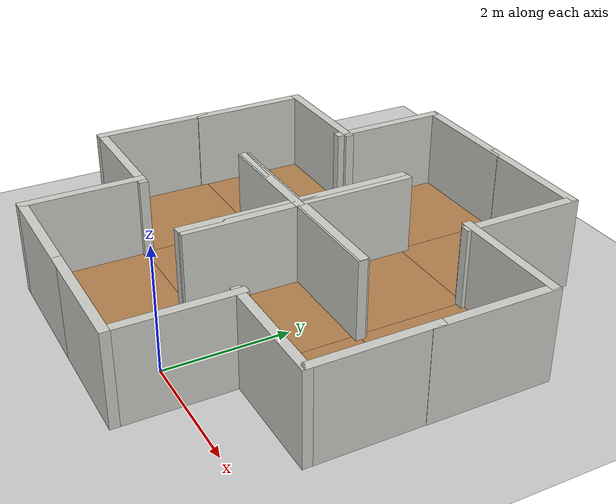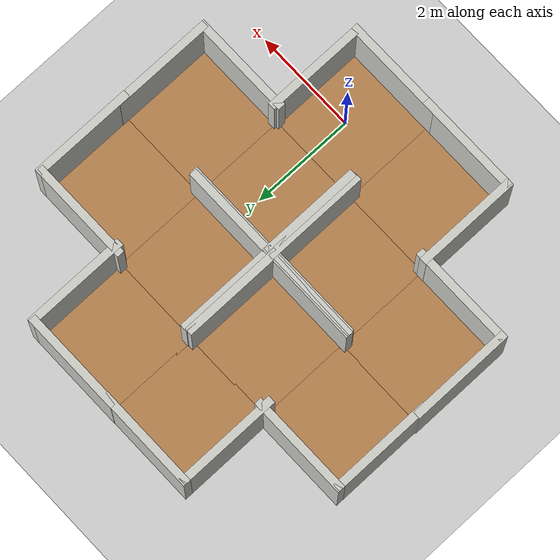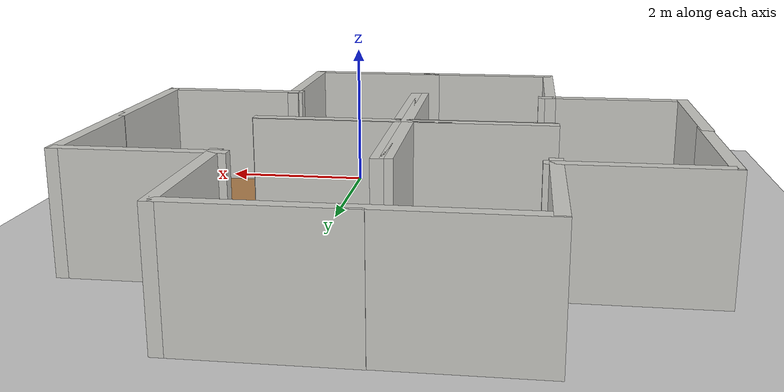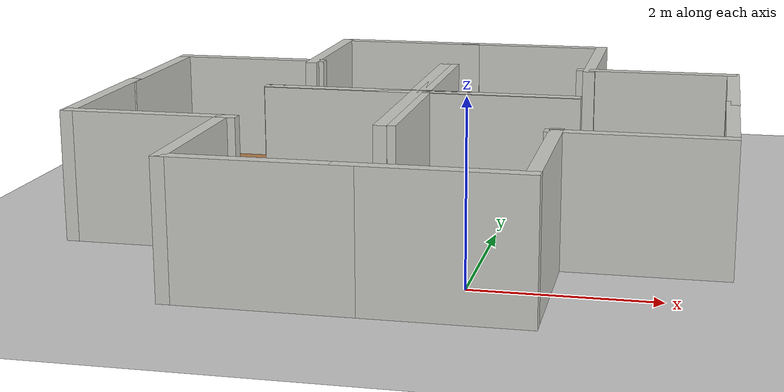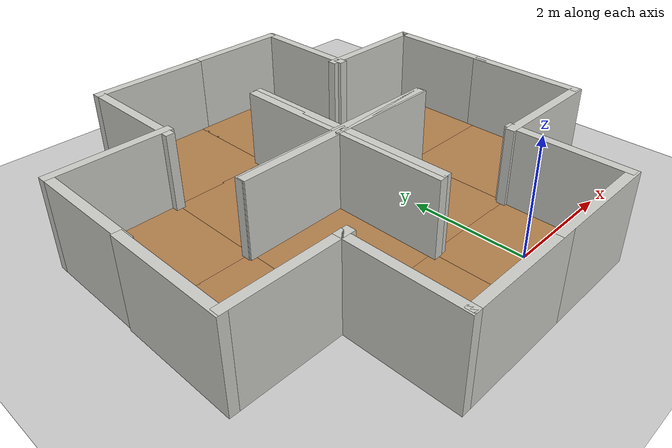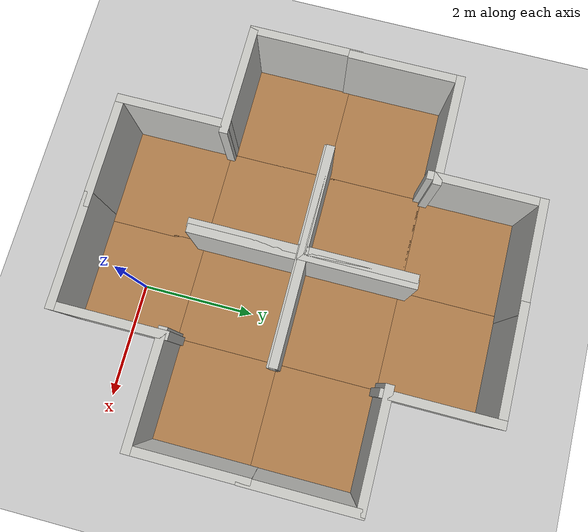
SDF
<sdf version="1.6">
 <world name="default">
  <light name="sun" type="directional">
   <pose>0 0 10 0 -0 0</pose>
   <diffuse>0.8 0.8 0.8 1</diffuse>
   <specular>0.1 0.1 0.1 1</specular>
   <attenuation>
    <range>1000</range>
    <constant>0.9</constant>
    <linear>0.01</linear>
    <quadratic>0.001</quadratic>
   </attenuation>
   <direction>-0.5 0.5 -1</direction>
  </light>
  <model name="ground_plane">
   <static>1</static>
   <link name="link">
    <collision name="collision">
     <geometry><plane><normal>0 0 1</normal><size>100 100</size></plane></geometry>
     <surface><friction><ode><mu>100</mu><mu2>50</mu2></ode></friction></surface>
    </collision>
    <visual name="visual">
     <cast_shadows>0</cast_shadows>
     <geometry><plane><normal>0 0 1</normal><size>100 100</size></plane></geometry>
     <material>
      <script><uri>file://media/materials/scripts/gazebo.material</uri><name>Gazebo/Grey</name></script>
     </material>
    </visual>
   </link>
  </model>
  <gravity>0 0 -9.8</gravity>
  <magnetic_field>6e-06 2.3e-05 -4.2e-05</magnetic_field>
  <atmosphere type="adiabatic"/>
  <physics name="default_physics" default="0" type="ode">
   <max_step_size>0.001</max_step_size>
   <real_time_factor>1</real_time_factor>
   <real_time_update_rate>1000</real_time_update_rate>
  </physics>
  <scene><ambient>0.4 0.4 0.4 1</ambient><background>0.7 0.7 0.7 1</background><shadows>1</shadows></scene>
  <spherical_coordinates>
   <surface_model>EARTH_WGS84</surface_model>
   <latitude_deg>0</latitude_deg>
   <longitude_deg>0</longitude_deg>
   <elevation>0</elevation>
   <heading_deg>0</heading_deg>
  </spherical_coordinates>
  <model name="nervemaze_corner">
   <pose>-0.136433 1.76341 0 0 -0 0</pose>
   <link name="Wall_0">
    <collision name="Wall_0_Collision">
     <geometry><box><size>1.76 1.75 0.2</size></box></geometry>
     <pose>0 0 0.1 0 -0 0</pose>
    </collision>
    <visual name="Wall_0_Visual">
     <pose>0 0 0.1 0 -0 0</pose>
     <geometry><box><size>1.76 1.75 0.2</size></box></geometry>
     <material>
      <script><uri>file://media/materials/scripts/gazebo.material</uri><name>Gazebo/Wood</name></script>
      <ambient>1 0.764706 0.305882 1</ambient>
     </material>
    </visual>
    <pose>0.027 -0.018 0 0 0 -1.5708</pose>
   </link>
   <link name="Wall_4">
    <collision name="Wall_4_Collision">
     <geometry><box><size>2 0.15 1.5</size></box></geometry>
     <pose>0 0 0.75 0 -0 0</pose>
    </collision>
    <visual name="Wall_4_Visual">
     <pose>0 0 0.75 0 -0 0</pose>
     <geometry><box><size>2 0.15 1.5</size></box></geometry>
     <material>
      <script><uri>file://media/materials/scripts/gazebo.material</uri><name>Gazebo/CeilingTiled</name></script>
      <ambient>1 0.764706 0.305882 1</ambient>
     </material>
    </visual>
    <pose>-0.925 -0.015 0 0 0 -1.5708</pose>
   </link>
   <link name="Wall_6">
    <collision name="Wall_6_Collision">
     <geometry><box><size>2 0.15 1.5</size></box></geometry>
     <pose>0 0 0.75 0 -0 0</pose>
    </collision>
    <visual name="Wall_6_Visual">
     <pose>0 0 0.75 0 -0 0</pose>
     <geometry><box><size>2 0.15 1.5</size></box></geometry>
     <material>
      <script><uri>file://media/materials/scripts/gazebo.material</uri><name>Gazebo/CeilingTiled</name></script>
      <ambient>1 0.764706 0.305882 1</ambient>
     </material>
    </visual>
    <pose>0 0.94 0 0 -0 0</pose>
   </link>
   <static>1</static>
  </model>
  <model name="nervemaze_corner_0">
   <pose>1.66388 1.80887 0 0 0 -3.14159</pose>
   <link name="Wall_0">
    <collision name="Wall_0_Collision">
     <geometry><box><size>1.76 1.75 0.2</size></box></geometry>
     <pose>0 0 0.1 0 -0 0</pose>
    </collision>
    <visual name="Wall_0_Visual">
     <pose>0 0 0.1 0 -0 0</pose>
     <geometry><box><size>1.76 1.75 0.2</size></box></geometry>
     <material>
      <script><uri>file://media/materials/scripts/gazebo.material</uri><name>Gazebo/Wood</name></script>
      <ambient>1 0.764706 0.305882 1</ambient>
     </material>
    </visual>
    <pose>0.027 -0.018 0 0 0 -1.5708</pose>
   </link>
   <link name="Wall_4">
    <collision name="Wall_4_Collision">
     <geometry><box><size>2 0.15 1.5</size></box></geometry>
     <pose>0 0 0.75 0 -0 0</pose>
    </collision>
    <visual name="Wall_4_Visual">
     <pose>0 0 0.75 0 -0 0</pose>
     <geometry><box><size>2 0.15 1.5</size></box></geometry>
     <material>
      <script><uri>file://media/materials/scripts/gazebo.material</uri><name>Gazebo/CeilingTiled</name></script>
      <ambient>1 0.764706 0.305882 1</ambient>
     </material>
    </visual>
    <pose>-0.925 -0.015 0 0 0 -1.5708</pose>
   </link>
   <link name="Wall_6">
    <collision name="Wall_6_Collision">
     <geometry><box><size>2 0.15 1.5</size></box></geometry>
     <pose>0 0 0.75 0 -0 0</pose>
    </collision>
    <visual name="Wall_6_Visual">
     <pose>0 0 0.75 0 -0 0</pose>
     <geometry><box><size>2 0.15 1.5</size></box></geometry>
     <material>
      <script><uri>file://media/materials/scripts/gazebo.material</uri><name>Gazebo/CeilingTiled</name></script>
      <ambient>1 0.764706 0.305882 1</ambient>
     </material>
    </visual>
    <pose>0 0.94 0 0 -0 0</pose>
   </link>
   <static>1</static>
  </model>
  <model name="nervemaze_corner_1">
   <pose>-0.136436 -0.021514 0 0 -0 3.14159</pose>
   <link name="Wall_0">
    <collision name="Wall_0_Collision">
     <geometry><box><size>1.76 1.75 0.2</size></box></geometry>
     <pose>0 0 0.1 0 -0 0</pose>
    </collision>
    <visual name="Wall_0_Visual">
     <pose>0 0 0.1 0 -0 0</pose>
     <geometry><box><size>1.76 1.75 0.2</size></box></geometry>
     <material>
      <script><uri>file://media/materials/scripts/gazebo.material</uri><name>Gazebo/Wood</name></script>
      <ambient>1 0.764706 0.305882 1</ambient>
     </material>
    </visual>
    <pose>0.027 -0.018 0 0 0 -1.5708</pose>
   </link>
   <link name="Wall_4">
    <collision name="Wall_4_Collision">
     <geometry><box><size>2 0.15 1.5</size></box></geometry>
     <pose>0 0 0.75 0 -0 0</pose>
    </collision>
    <visual name="Wall_4_Visual">
     <pose>0 0 0.75 0 -0 0</pose>
     <geometry><box><size>2 0.15 1.5</size></box></geometry>
     <material>
      <script><uri>file://media/materials/scripts/gazebo.material</uri><name>Gazebo/CeilingTiled</name></script>
      <ambient>1 0.764706 0.305882 1</ambient>
     </material>
    </visual>
    <pose>-0.925 -0.015 0 0 0 -1.5708</pose>
   </link>
   <link name="Wall_6">
    <collision name="Wall_6_Collision">
     <geometry><box><size>2 0.15 1.5</size></box></geometry>
     <pose>0 0 0.75 0 -0 0</pose>
    </collision>
    <visual name="Wall_6_Visual">
     <pose>0 0 0.75 0 -0 0</pose>
     <geometry><box><size>2 0.15 1.5</size></box></geometry>
     <material>
      <script><uri>file://media/materials/scripts/gazebo.material</uri><name>Gazebo/CeilingTiled</name></script>
      <ambient>1 0.764706 0.305882 1</ambient>
     </material>
    </visual>
    <pose>0 0.94 0 0 -0 0</pose>
   </link>
   <static>1</static>
  </model>
  <model name="nervemaze_corner_2">
   <pose>-1.90442 -0.03658 0 0 -0 1.5708</pose>
   <link name="Wall_0">
    <collision name="Wall_0_Collision">
     <geometry><box><size>1.76 1.75 0.2</size></box></geometry>
     <pose>0 0 0.1 0 -0 0</pose>
    </collision>
    <visual name="Wall_0_Visual">
     <pose>0 0 0.1 0 -0 0</pose>
     <geometry><box><size>1.76 1.75 0.2</size></box></geometry>
     <material>
      <script><uri>file://media/materials/scripts/gazebo.material</uri><name>Gazebo/Wood</name></script>
      <ambient>1 0.764706 0.305882 1</ambient>
     </material>
    </visual>
    <pose>0.027 -0.018 0 0 0 -1.5708</pose>
   </link>
   <link name="Wall_4">
    <collision name="Wall_4_Collision">
     <geometry><box><size>2 0.15 1.5</size></box></geometry>
     <pose>0 0 0.75 0 -0 0</pose>
    </collision>
    <visual name="Wall_4_Visual">
     <pose>0 0 0.75 0 -0 0</pose>
     <geometry><box><size>2 0.15 1.5</size></box></geometry>
     <material>
      <script><uri>file://media/materials/scripts/gazebo.material</uri><name>Gazebo/CeilingTiled</name></script>
      <ambient>1 0.764706 0.305882 1</ambient>
     </material>
    </visual>
    <pose>-0.925 -0.015 0 0 0 -1.5708</pose>
   </link>
   <link name="Wall_6">
    <collision name="Wall_6_Collision">
     <geometry><box><size>2 0.15 1.5</size></box></geometry>
     <pose>0 0 0.75 0 -0 0</pose>
    </collision>
    <visual name="Wall_6_Visual">
     <pose>0 0 0.75 0 -0 0</pose>
     <geometry><box><size>2 0.15 1.5</size></box></geometry>
     <material>
      <script><uri>file://media/materials/scripts/gazebo.material</uri><name>Gazebo/CeilingTiled</name></script>
      <ambient>1 0.764706 0.305882 1</ambient>
     </material>
    </visual>
    <pose>0 0.94 0 0 -0 0</pose>
   </link>
   <static>1</static>
  </model>
  <model name="nervemaze_corner_3">
   <pose>1.65406 3.59626 0 0 0 -1.5708</pose>
   <link name="Wall_0">
    <collision name="Wall_0_Collision">
     <geometry><box><size>1.76 1.75 0.2</size></box></geometry>
     <pose>0 0 0.1 0 -0 0</pose>
    </collision>
    <visual name="Wall_0_Visual">
     <pose>0 0 0.1 0 -0 0</pose>
     <geometry><box><size>1.76 1.75 0.2</size></box></geometry>
     <material>
      <script><uri>file://media/materials/scripts/gazebo.material</uri><name>Gazebo/Wood</name></script>
      <ambient>1 0.764706 0.305882 1</ambient>
     </material>
    </visual>
    <pose>0.027 -0.018 0 0 0 -1.5708</pose>
   </link>
   <link name="Wall_4">
    <collision name="Wall_4_Collision">
     <geometry><box><size>2 0.15 1.5</size></box></geometry>
     <pose>0 0 0.75 0 -0 0</pose>
    </collision>
    <visual name="Wall_4_Visual">
     <pose>0 0 0.75 0 -0 0</pose>
     <geometry><box><size>2 0.15 1.5</size></box></geometry>
     <material>
      <script><uri>file://media/materials/scripts/gazebo.material</uri><name>Gazebo/CeilingTiled</name></script>
      <ambient>1 0.764706 0.305882 1</ambient>
     </material>
    </visual>
    <pose>-0.925 -0.015 0 0 0 -1.5708</pose>
   </link>
   <link name="Wall_6">
    <collision name="Wall_6_Collision">
     <geometry><box><size>2 0.15 1.5</size></box></geometry>
     <pose>0 0 0.75 0 -0 0</pose>
    </collision>
    <visual name="Wall_6_Visual">
     <pose>0 0 0.75 0 -0 0</pose>
     <geometry><box><size>2 0.15 1.5</size></box></geometry>
     <material>
      <script><uri>file://media/materials/scripts/gazebo.material</uri><name>Gazebo/CeilingTiled</name></script>
      <ambient>1 0.764706 0.305882 1</ambient>
     </material>
    </visual>
    <pose>0 0.94 0 0 -0 0</pose>
   </link>
   <static>1</static>
  </model>
  <model name="nervemaze_corner_4">
   <pose>-1.90442 1.76341 0 0 0 -1.5708</pose>
   <link name="Wall_0">
    <collision name="Wall_0_Collision">
     <geometry><box><size>1.76 1.75 0.2</size></box></geometry>
     <pose>0 0 0.1 0 -0 0</pose>
    </collision>
    <visual name="Wall_0_Visual">
     <pose>0 0 0.1 0 -0 0</pose>
     <geometry><box><size>1.76 1.75 0.2</size></box></geometry>
     <material>
      <script><uri>file://media/materials/scripts/gazebo.material</uri><name>Gazebo/Wood</name></script>
      <ambient>1 0.764706 0.305882 1</ambient>
     </material>
    </visual>
    <pose>0.027 -0.018 0 0 0 -1.5708</pose>
   </link>
   <link name="Wall_4">
    <collision name="Wall_4_Collision">
     <geometry><box><size>2 0.15 1.5</size></box></geometry>
     <pose>0 0 0.75 0 -0 0</pose>
    </collision>
    <visual name="Wall_4_Visual">
     <pose>0 0 0.75 0 -0 0</pose>
     <geometry><box><size>2 0.15 1.5</size></box></geometry>
     <material>
      <script><uri>file://media/materials/scripts/gazebo.material</uri><name>Gazebo/CeilingTiled</name></script>
      <ambient>1 0.764706 0.305882 1</ambient>
     </material>
    </visual>
    <pose>-0.925 -0.015 0 0 0 -1.5708</pose>
   </link>
   <link name="Wall_6">
    <collision name="Wall_6_Collision">
     <geometry><box><size>2 0.15 1.5</size></box></geometry>
     <pose>0 0 0.75 0 -0 0</pose>
    </collision>
    <visual name="Wall_6_Visual">
     <pose>0 0 0.75 0 -0 0</pose>
     <geometry><box><size>2 0.15 1.5</size></box></geometry>
     <material>
      <script><uri>file://media/materials/scripts/gazebo.material</uri><name>Gazebo/CeilingTiled</name></script>
      <ambient>1 0.764706 0.305882 1</ambient>
     </material>
    </visual>
    <pose>0 0.94 0 0 -0 0</pose>
   </link>
   <static>1</static>
  </model>
  <model name="nervemaze_corner_5">
   <pose>-1.90442 3.59626 0 0 0 -3.14159</pose>
   <link name="Wall_0">
    <collision name="Wall_0_Collision">
     <geometry><box><size>1.76 1.75 0.2</size></box></geometry>
     <pose>0 0 0.1 0 -0 0</pose>
    </collision>
    <visual name="Wall_0_Visual">
     <pose>0 0 0.1 0 -0 0</pose>
     <geometry><box><size>1.76 1.75 0.2</size></box></geometry>
     <material>
      <script><uri>file://media/materials/scripts/gazebo.material</uri><name>Gazebo/Wood</name></script>
      <ambient>1 0.764706 0.305882 1</ambient>
     </material>
    </visual>
    <pose>0.027 -0.018 0 0 0 -1.5708</pose>
   </link>
   <link name="Wall_4">
    <collision name="Wall_4_Collision">
     <geometry><box><size>2 0.15 1.5</size></box></geometry>
     <pose>0 0 0.75 0 -0 0</pose>
    </collision>
    <visual name="Wall_4_Visual">
     <pose>0 0 0.75 0 -0 0</pose>
     <geometry><box><size>2 0.15 1.5</size></box></geometry>
     <material>
      <script><uri>file://media/materials/scripts/gazebo.material</uri><name>Gazebo/CeilingTiled</name></script>
      <ambient>1 0.764706 0.305882 1</ambient>
     </material>
    </visual>
    <pose>-0.925 -0.015 0 0 0 -1.5708</pose>
   </link>
   <link name="Wall_6">
    <collision name="Wall_6_Collision">
     <geometry><box><size>2 0.15 1.5</size></box></geometry>
     <pose>0 0 0.75 0 -0 0</pose>
    </collision>
    <visual name="Wall_6_Visual">
     <pose>0 0 0.75 0 -0 0</pose>
     <geometry><box><size>2 0.15 1.5</size></box></geometry>
     <material>
      <script><uri>file://media/materials/scripts/gazebo.material</uri><name>Gazebo/CeilingTiled</name></script>
      <ambient>1 0.764706 0.305882 1</ambient>
     </material>
    </visual>
    <pose>0 0.94 0 0 -0 0</pose>
   </link>
   <static>1</static>
  </model>
  <model name="nervemaze_corner_6">
   <pose>-0.136435 3.59626 0 0 -0 1.5708</pose>
   <link name="Wall_0">
    <collision name="Wall_0_Collision">
     <geometry><box><size>1.76 1.75 0.2</size></box></geometry>
     <pose>0 0 0.1 0 -0 0</pose>
    </collision>
    <visual name="Wall_0_Visual">
     <pose>0 0 0.1 0 -0 0</pose>
     <geometry><box><size>1.76 1.75 0.2</size></box></geometry>
     <material>
      <script><uri>file://media/materials/scripts/gazebo.material</uri><name>Gazebo/Wood</name></script>
      <ambient>1 0.764706 0.305882 1</ambient>
     </material>
    </visual>
    <pose>0.027 -0.018 0 0 0 -1.5708</pose>
   </link>
   <link name="Wall_4">
    <collision name="Wall_4_Collision">
     <geometry><box><size>2 0.15 1.5</size></box></geometry>
     <pose>0 0 0.75 0 -0 0</pose>
    </collision>
    <visual name="Wall_4_Visual">
     <pose>0 0 0.75 0 -0 0</pose>
     <geometry><box><size>2 0.15 1.5</size></box></geometry>
     <material>
      <script><uri>file://media/materials/scripts/gazebo.material</uri><name>Gazebo/CeilingTiled</name></script>
      <ambient>1 0.764706 0.305882 1</ambient>
     </material>
    </visual>
    <pose>-0.925 -0.015 0 0 0 -1.5708</pose>
   </link>
   <link name="Wall_6">
    <collision name="Wall_6_Collision">
     <geometry><box><size>2 0.15 1.5</size></box></geometry>
     <pose>0 0 0.75 0 -0 0</pose>
    </collision>
    <visual name="Wall_6_Visual">
     <pose>0 0 0.75 0 -0 0</pose>
     <geometry><box><size>2 0.15 1.5</size></box></geometry>
     <material>
      <script><uri>file://media/materials/scripts/gazebo.material</uri><name>Gazebo/CeilingTiled</name></script>
      <ambient>1 0.764706 0.305882 1</ambient>
     </material>
    </visual>
    <pose>0 0.94 0 0 -0 0</pose>
   </link>
   <static>1</static>
  </model>
  <model name="nervemaze_corner_7">
   <pose>-3.6951 1.80862 0 0 -0 1.5708</pose>
   <link name="Wall_0">
    <collision name="Wall_0_Collision">
     <geometry><box><size>1.76 1.75 0.2</size></box></geometry>
     <pose>0 0 0.1 0 -0 0</pose>
    </collision>
    <visual name="Wall_0_Visual">
     <pose>0 0 0.1 0 -0 0</pose>
     <geometry><box><size>1.76 1.75 0.2</size></box></geometry>
     <material>
      <script><uri>file://media/materials/scripts/gazebo.material</uri><name>Gazebo/Wood</name></script>
      <ambient>1 0.764706 0.305882 1</ambient>
     </material>
    </visual>
    <pose>0.027 -0.018 0 0 0 -1.5708</pose>
   </link>
   <link name="Wall_4">
    <collision name="Wall_4_Collision">
     <geometry><box><size>2 0.15 1.5</size></box></geometry>
     <pose>0 0 0.75 0 -0 0</pose>
    </collision>
    <visual name="Wall_4_Visual">
     <pose>0 0 0.75 0 -0 0</pose>
     <geometry><box><size>2 0.15 1.5</size></box></geometry>
     <material>
      <script><uri>file://media/materials/scripts/gazebo.material</uri><name>Gazebo/CeilingTiled</name></script>
      <ambient>1 0.764706 0.305882 1</ambient>
     </material>
    </visual>
    <pose>-0.925 -0.015 0 0 0 -1.5708</pose>
   </link>
   <link name="Wall_6">
    <collision name="Wall_6_Collision">
     <geometry><box><size>2 0.15 1.5</size></box></geometry>
     <pose>0 0 0.75 0 -0 0</pose>
    </collision>
    <visual name="Wall_6_Visual">
     <pose>0 0 0.75 0 -0 0</pose>
     <geometry><box><size>2 0.15 1.5</size></box></geometry>
     <material>
      <script><uri>file://media/materials/scripts/gazebo.material</uri><name>Gazebo/CeilingTiled</name></script>
      <ambient>1 0.764706 0.305882 1</ambient>
     </material>
    </visual>
    <pose>0 0.94 0 0 -0 0</pose>
   </link>
   <static>1</static>
  </model>
  <model name="nervemaze_corner_8">
   <pose>-3.69209 3.59626 0 0 -0 0</pose>
   <link name="Wall_0">
    <collision name="Wall_0_Collision">
     <geometry><box><size>1.76 1.75 0.2</size></box></geometry>
     <pose>0 0 0.1 0 -0 0</pose>
    </collision>
    <visual name="Wall_0_Visual">
     <pose>0 0 0.1 0 -0 0</pose>
     <geometry><box><size>1.76 1.75 0.2</size></box></geometry>
     <material>
      <script><uri>file://media/materials/scripts/gazebo.material</uri><name>Gazebo/Wood</name></script>
      <ambient>1 0.764706 0.305882 1</ambient>
     </material>
    </visual>
    <pose>0.027 -0.018 0 0 0 -1.5708</pose>
   </link>
   <link name="Wall_4">
    <collision name="Wall_4_Collision">
     <geometry><box><size>2 0.15 1.5</size></box></geometry>
     <pose>0 0 0.75 0 -0 0</pose>
    </collision>
    <visual name="Wall_4_Visual">
     <pose>0 0 0.75 0 -0 0</pose>
     <geometry><box><size>2 0.15 1.5</size></box></geometry>
     <material>
      <script><uri>file://media/materials/scripts/gazebo.material</uri><name>Gazebo/CeilingTiled</name></script>
      <ambient>1 0.764706 0.305882 1</ambient>
     </material>
    </visual>
    <pose>-0.925 -0.015 0 0 0 -1.5708</pose>
   </link>
   <link name="Wall_6">
    <collision name="Wall_6_Collision">
     <geometry><box><size>2 0.15 1.5</size></box></geometry>
     <pose>0 0 0.75 0 -0 0</pose>
    </collision>
    <visual name="Wall_6_Visual">
     <pose>0 0 0.75 0 -0 0</pose>
     <geometry><box><size>2 0.15 1.5</size></box></geometry>
     <material>
      <script><uri>file://media/materials/scripts/gazebo.material</uri><name>Gazebo/CeilingTiled</name></script>
      <ambient>1 0.764706 0.305882 1</ambient>
     </material>
    </visual>
    <pose>0 0.94 0 0 -0 0</pose>
   </link>
   <static>1</static>
  </model>
  <model name="nervemaze_corner_9">
   <pose>-1.90441 5.36219 0 0 -0 0</pose>
   <link name="Wall_0">
    <collision name="Wall_0_Collision">
     <geometry><box><size>1.76 1.75 0.2</size></box></geometry>
     <pose>0 0 0.1 0 -0 0</pose>
    </collision>
    <visual name="Wall_0_Visual">
     <pose>0 0 0.1 0 -0 0</pose>
     <geometry><box><size>1.76 1.75 0.2</size></box></geometry>
     <material>
      <script><uri>file://media/materials/scripts/gazebo.material</uri><name>Gazebo/Wood</name></script>
      <ambient>1 0.764706 0.305882 1</ambient>
     </material>
    </visual>
    <pose>0.027 -0.018 0 0 0 -1.5708</pose>
   </link>
   <link name="Wall_4">
    <collision name="Wall_4_Collision">
     <geometry><box><size>2 0.15 1.5</size></box></geometry>
     <pose>0 0 0.75 0 -0 0</pose>
    </collision>
    <visual name="Wall_4_Visual">
     <pose>0 0 0.75 0 -0 0</pose>
     <geometry><box><size>2 0.15 1.5</size></box></geometry>
     <material>
      <script><uri>file://media/materials/scripts/gazebo.material</uri><name>Gazebo/CeilingTiled</name></script>
      <ambient>1 0.764706 0.305882 1</ambient>
     </material>
    </visual>
    <pose>-0.925 -0.015 0 0 0 -1.5708</pose>
   </link>
   <link name="Wall_6">
    <collision name="Wall_6_Collision">
     <geometry><box><size>2 0.15 1.5</size></box></geometry>
     <pose>0 0 0.75 0 -0 0</pose>
    </collision>
    <visual name="Wall_6_Visual">
     <pose>0 0 0.75 0 -0 0</pose>
     <geometry><box><size>2 0.15 1.5</size></box></geometry>
     <material>
      <script><uri>file://media/materials/scripts/gazebo.material</uri><name>Gazebo/CeilingTiled</name></script>
      <ambient>1 0.764706 0.305882 1</ambient>
     </material>
    </visual>
    <pose>0 0.94 0 0 -0 0</pose>
   </link>
   <static>1</static>
  </model>
  <model name="nervemaze_corner_10">
   <pose>-0.136435 5.38265 0 0 0 -1.5708</pose>
   <link name="Wall_0">
    <collision name="Wall_0_Collision">
     <geometry><box><size>1.76 1.75 0.2</size></box></geometry>
     <pose>0 0 0.1 0 -0 0</pose>
    </collision>
    <visual name="Wall_0_Visual">
     <pose>0 0 0.1 0 -0 0</pose>
     <geometry><box><size>1.76 1.75 0.2</size></box></geometry>
     <material>
      <script><uri>file://media/materials/scripts/gazebo.material</uri><name>Gazebo/Wood</name></script>
      <ambient>1 0.764706 0.305882 1</ambient>
     </material>
    </visual>
    <pose>0.027 -0.018 0 0 0 -1.5708</pose>
   </link>
   <link name="Wall_4">
    <collision name="Wall_4_Collision">
     <geometry><box><size>2 0.15 1.5</size></box></geometry>
     <pose>0 0 0.75 0 -0 0</pose>
    </collision>
    <visual name="Wall_4_Visual">
     <pose>0 0 0.75 0 -0 0</pose>
     <geometry><box><size>2 0.15 1.5</size></box></geometry>
     <material>
      <script><uri>file://media/materials/scripts/gazebo.material</uri><name>Gazebo/CeilingTiled</name></script>
      <ambient>1 0.764706 0.305882 1</ambient>
     </material>
    </visual>
    <pose>-0.925 -0.015 0 0 0 -1.5708</pose>
   </link>
   <link name="Wall_6">
    <collision name="Wall_6_Collision">
     <geometry><box><size>2 0.15 1.5</size></box></geometry>
     <pose>0 0 0.75 0 -0 0</pose>
    </collision>
    <visual name="Wall_6_Visual">
     <pose>0 0 0.75 0 -0 0</pose>
     <geometry><box><size>2 0.15 1.5</size></box></geometry>
     <material>
      <script><uri>file://media/materials/scripts/gazebo.material</uri><name>Gazebo/CeilingTiled</name></script>
      <ambient>1 0.764706 0.305882 1</ambient>
     </material>
    </visual>
    <pose>0 0.94 0 0 -0 0</pose>
   </link>
   <static>1</static>
  </model>
 </world>
</sdf>
